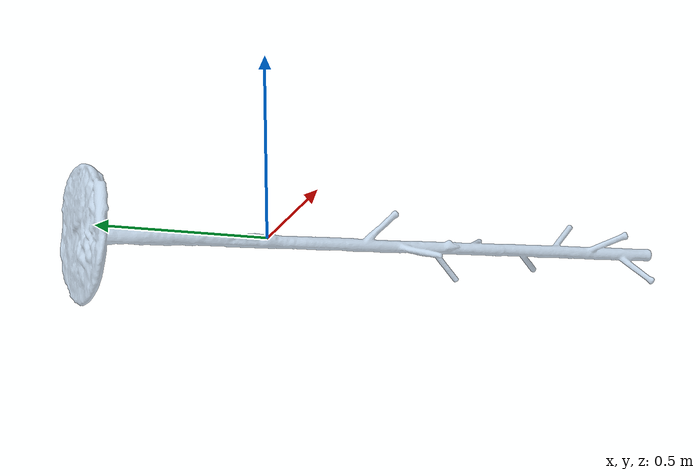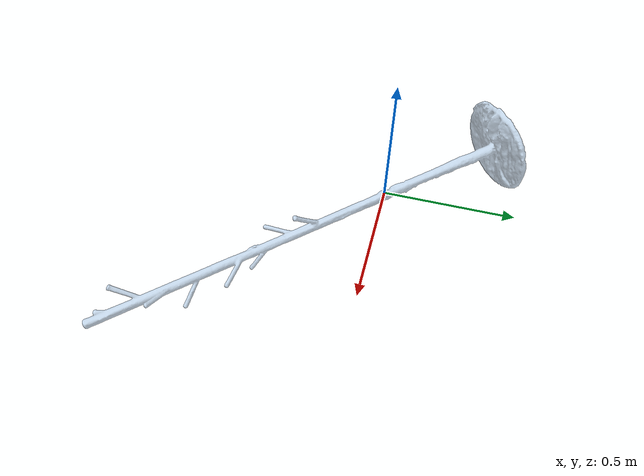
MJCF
<mujoco model="clothesstand">
    <compiler meshdir="./"/>

    <default>
        <geom friction="0.9 0.5 0.5" rgba="0.7 0.8 0.9 0.7"/>
        <joint damping="0.5"/>
    </default>

    <asset>
        <mesh name="clothesstand_mesh" file="clothesstand.obj" scale="1 1 1"/>
    </asset>

    <worldbody>
        <body name="clothesstand_link">
            <inertial pos="0 0 0" mass="0.1" diaginertia="0.002 0.002 0.002"/>
            <geom name="clothesstand" type="mesh" mesh="clothesstand_mesh"
                  pos="0 0 0" quat="1 0 0 0"
                  rgba="0.7 0.8 0.9 0.7"
                  friction="0.9 0.5 0.5"
                  solref="0.02 1"
                  solimp="0.9 0.95 0.001"/>
        </body>
    </worldbody>
</mujoco>
